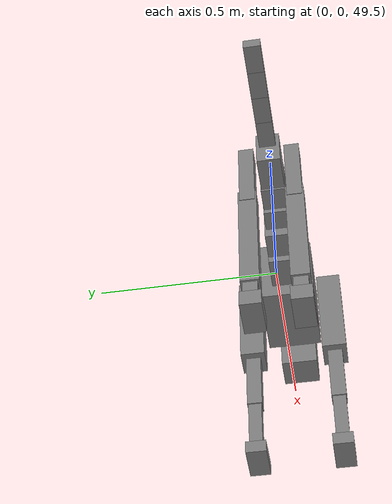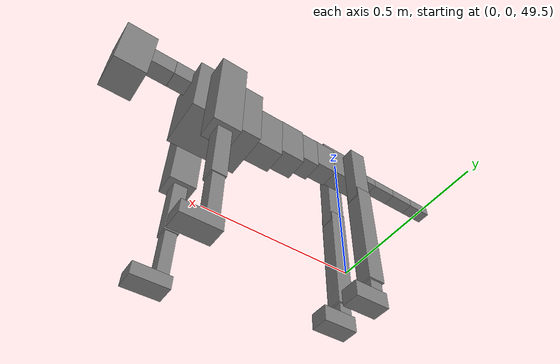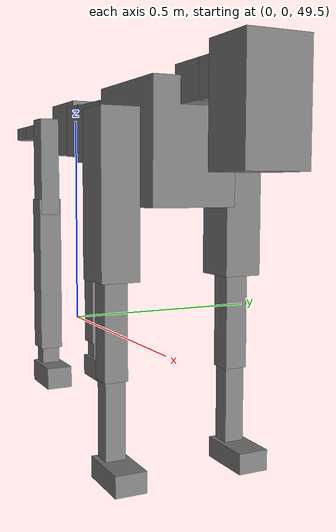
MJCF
<mujoco model="dog">

    <default>
        <joint armature="0.02" stiffness="1" damping="0.2" limited="true"/>
        <geom condim="3" friction="1 0.05 0.05" margin="0.01"/>
        <motor ctrllimited="true" ctrlrange="-1.0 1.0" forcelimited="true" gear="50"/>
    </default>

    <compiler inertiafromgeom="true" angle="radian"/>

    <option timestep="0.016" iterations="50" tolerance="1e-10" solver="Newton" jacobian="dense" cone="pyramidal"/>

    <size nconmax="20000" njmax="60000" nstack="5000000"/>
    <visual>
        <map force="0.1" zfar="30"/>
        <rgba haze="0.15 0.25 0.35 1"/>
        <quality shadowsize="2048"/>
        <global offwidth="800" offheight="800"/>
    </visual>

    <asset>
        <texture type="skybox" builtin="gradient" rgb1="0.3 0.5 0.7" rgb2="0 0 0" width="512" height="512"/>
        <texture name="texplane" type="2d" builtin="checker" rgb1=".2 .3 .4" rgb2=".1 0.15 0.2" width="512" height="512"
                 mark="cross" markrgb=".8 .8 .8"/>
        <texture name="texgeom" type="cube" builtin="flat" mark="cross" width="127" height="1278" rgb1="0.8 0.6 0.4"
                 rgb2="0.8 0.6 0.4" markrgb="1 1 1" random="0.01"/>

        <material name="matplane" reflectance="0.3" texture="texplane" texrepeat="1 1" texuniform="true"/>
        <material name="matgeom" texture="texgeom" texuniform="true" rgba="0.8 0.6 .4 1"/>
    </asset>

    <worldbody>
        <geom name="floor" pos="0 0 0" size="0 0 .25" type="plane" material="matplane" condim="3"/>

        <light directional="false" diffuse=".2 .2 .2" specular="0 0 0" pos="0 0 5" dir="0 0 -1" castshadow="false"/>
        <light mode="targetbodycom" target="torso" directional="false" diffuse=".8 .8 .8" specular="0.3 0.3 0.3"
               pos="0 0 4.0" dir="0 0 -1"/>

        <body name="root" pos="0 0 50">
            <freejoint name="root_1"/>
            <geom type="box" pos="0 0 -0.02" size="0.0774  0.0358  0.063" density="2030"/>

            <body name="spine1" pos="0.054 0 0">
                <joint name="spine1_y" axis="0 1 0" range="0 0.7" limited="true"/>
                <geom type="box" pos="0.02375 0 -0.03" size="0.04375  0.0375  0.05985" density="2030"/>

                <body name="spine2" pos="0.0612 0 0">
                    <joint name="spine2_y" axis="0 1 0" range="-0.15 0.15" limited="true"/>
                    <geom type="box" pos="0.03555  0  -0.04" size="0.04055  0.039  0.06615" density="2030"/>

                    <body name="spine3" pos="0.0730 0 0">
                        <joint name="spine3_y" axis="0 1 0" range="-0.15 0.15" limited="true"/>
                        <geom type="box" pos="0.03555  0  -0.057" size="0.04555  0.0445  0.081" density="2030"/>

                        <body name="spine4" pos="0.0780 0 0">
                            <joint name="spine4_y" axis="0 1 0" range="-0.15 0.15" limited="true"/>
                            <geom type="box" pos="0.05265  0  -0.07" size="0.05265  0.045  0.09135" density="2030"/>

                            <body name="torso" pos="0.1082 0 0">
                                <joint name="torso_y" axis="0 1 0" range="-0.15 0.15" limited="true"/>
                                <geom type="box" pos="0.11925  0  -0.085" size="0.11925  0.085  0.11745"
                                      density="2030"/>

                                <body name="neck1" pos="0.2160  0   0.0180">
                                    <joint name="neck1_y" axis="0 1 0" range="-1.2  -1" limited="true"/>
                                    <geom type="box" pos="0.0423  0  0" size="0.0423  0.03  0.036" density="2325"/>

                                    <body name="neck2" pos="0.0853  0  0">
                                        <joint name="neck2_y" axis="0 1 0" range="0.1  0" limited="true"/>
                                        <geom type="box" pos="0.0423  0  0" size="0.0423  0.03  0.036" density="2325"/>

                                        <body name="head" pos="0.0853  0  0">
                                            <joint name="head_y" axis="0 1 0" range="-0.3  -0.2" limited="true"/>
                                            <geom type="box" pos="0.0531  0  -0.055" size="0.0531  0.06  0.1044"
                                                  density="4030"/>

                                        </body>
                                    </body>
                                </body>

                                <body name="front_shoulder" pos="0.156  0   -0.0480">
                                    <joint name="front_shoulder_y" axis="0 1 0" range="-1 1.5" limited="true"/>
                                    <geom type="box" pos="0 0.13 -0.1318" size="0.0445  0.0380  0.1585" density="1158"/>
                                    <geom type="box" pos="0 -0.13 -0.1318" size="0.0445  0.0380  0.1585"
                                          density="1158"/>

                                    <body name="front_elbow" pos="0  0  -0.2637">
                                        <joint name="front_elbow_y" axis="0 1 0" range="-2 0" limited="true"/>
                                        <geom type="box" pos="0 0.13 -0.1071" size="0.0227  0.0232  0.1071"
                                              density="1081"/>
                                        <geom type="box" pos="0 -0.13 -0.1071" size="0.0227  0.0232  0.1071"
                                              density="1081"/>

                                        <body name="front_wrist" pos="0  0  -0.2143">
                                            <joint name="front_wrist_y" axis="0 1 0" range="-0.2 0" limited="true"/>
                                            <geom type="box" pos="0 0.13 -0.0827" size="0.0185  0.0205  0.0959"
                                                  density="1664"/>
                                            <geom type="box" pos="0 -0.13 -0.0827" size="0.0185  0.0205  0.0959"
                                                  density="1664"/>

                                            <body name="front_finger_end" pos="0  0  -0.1655">
                                                <joint name="front_finger_y" axis="0 1 0" range="-0.4 1"
                                                       limited="true"/>
                                                <geom type="box" pos="0.0314  0.13  -0.0055"
                                                      size="0.0576  0.0314  0.0205" density="1515"/>
                                                <geom type="box" pos="0.0314  -0.13  -0.0055"
                                                      size="0.0576  0.0314  0.0205" density="1515"/>

                                            </body>

                                        </body>
                                    </body>
                                </body>

                            </body>
                        </body>
                    </body>
                </body>
            </body>

            <body name="back_hip" pos="-0.03 0 -0.018">
                <joint name="back_hip_y" axis="0 1 0" range="-1.5 0.3" limited="true"/>
                <geom type="box" pos="0 0.07 -0.0964" size="0.0295  0.0231  0.1192" density="1154"/>
                <geom type="box" pos="0 -0.07 -0.0964" size="0.0295  0.0231  0.1192" density="1154"/>

                <body name="back_knee" pos="0  0  -0.1928">
                    <joint name="back_knee_y" axis="0 1 0" range="0 2.8" limited="true"/>
                    <geom type="box" pos="0 0.07 -0.1744" size="0.0277  0.0273  0.1899" density="1227"/>
                    <geom type="box" pos="0 -0.07 -0.1744" size="0.0277  0.0273  0.1899" density="1227"/>

                    <body name="back_ankle" pos="0  0  -0.3487">
                        <joint name="back_ankle_y" axis="0 1 0" range="-2.2 0" limited="true"/>
                        <geom type="box" pos="0 0.07 -0.0348" size="0.0214  0.0214  0.0460" density="1284"/>
                        <geom type="box" pos="0 -0.07 -0.0348" size="0.0214  0.0214  0.0460" density="1284"/>

                        <body name="back_toe_end" pos="0  0  -0.0696">
                            <joint name="back_toe_y" axis="0 1 0" range="-0.4 1" limited="true"/>
                            <geom type="box" pos="0.0309  0.07  -0.0109" size="0.0566  0.0309  0.0259" density="1515"/>
                            <geom type="box" pos="0.0309  -0.07  -0.0109" size="0.0566  0.0309  0.0259" density="1515"/>

                        </body>
                    </body>
                </body>
            </body>

            <body name="tail1" pos="-0.074 0 -0.006">
                <joint name="tail1_y" axis="0 1 0" range="-0.2 0.2" limited="true"/>
                <geom type="box" pos="-0.0536  0  0" size="0.045  0.025  0.0175" density="1587"/>

                <body name="tail2" pos="-0.09 0 0">
                    <joint name="tail2_y" axis="0 1 0" range="-0.2 0.2" limited="true"/>
                    <geom type="box" pos="-0.0536  0  0" size="0.045  0.025  0.0175" density="1587"/>

                    <body name="tail3" pos="-0.09 0 0">
                        <joint name="tail3_y" axis="0 1 0" range="-0.2 0.2" limited="true"/>
                        <geom type="box" pos="-0.0536  0  0" size="0.045  0.025  0.0175" density="1587"/>

                        <body name="tail4" pos="-0.09 0 0">
                            <joint name="tail4_y" axis="0 1 0" range="-0.2 0.2" limited="true"/>
                            <geom type="box" pos="-0.0536  0  0" size="0.045  0.025  0.0175" density="1587"/>

                        </body>
                    </body>
                </body>
            </body>
        </body>
    </worldbody>

    <actuator>
        <motor joint="spine1_y" forcerange="-150 150     "/>
        <motor joint="spine2_y" forcerange="-150 150     "/>
        <motor joint="spine3_y" forcerange="-150 150     "/>
        <motor joint="spine4_y" forcerange="-150 150     "/>
        <motor joint="torso_y" forcerange="-150 150     "/>
        <motor joint="neck1_y" forcerange="-100 100       "/>
        <motor joint="neck2_y" forcerange="-100 100       "/>
        <motor joint="head_y" forcerange="-150 150       "/>
        <motor joint="front_shoulder_y" forcerange="-182.89 170.42"/>
        <motor joint="front_elbow_y" forcerange="-144.05 124.78"/>
        <motor joint="front_wrist_y" forcerange="-81.43 82.93"/>
        <motor joint="front_finger_y" forcerange="-49.68 77.95"/>
        <motor joint="back_hip_y" forcerange="-245.46 262.97"/>
        <motor joint="back_knee_y" forcerange="-270.38 326.37"/>
        <motor joint="back_angle_y" forcerange="-64.16 177.53"/>
        <motor joint="back_toe_y" forcerange="-124.90 42.23"/>
        <motor joint="tail1_y" forcerange="-50 50     "/>
        <motor joint="tail2_y" forcerange="-50 50     "/>
        <motor joint="tail3_y" forcerange="-50 50     "/>
        <motor joint="tail4_y" forcerange="-50 50     "/>
    </actuator>
</mujoco>
